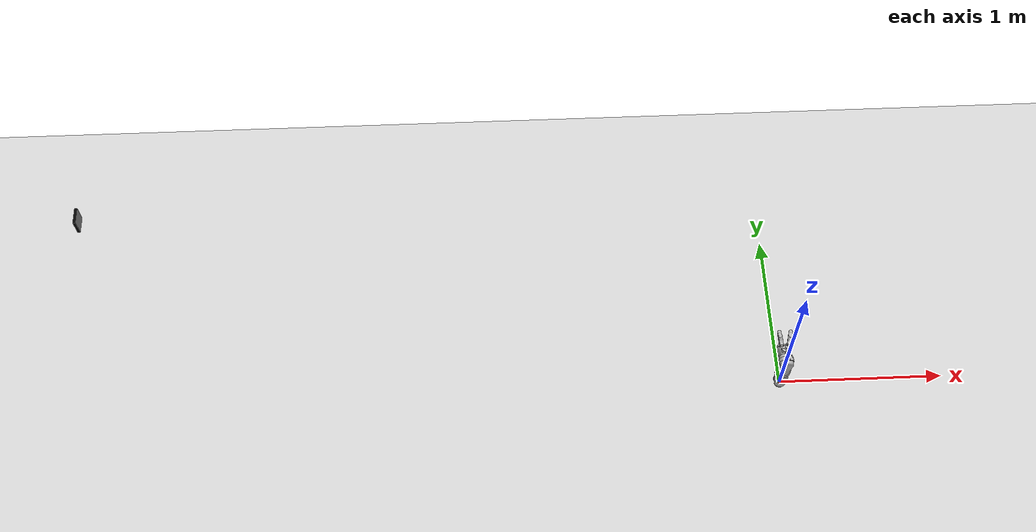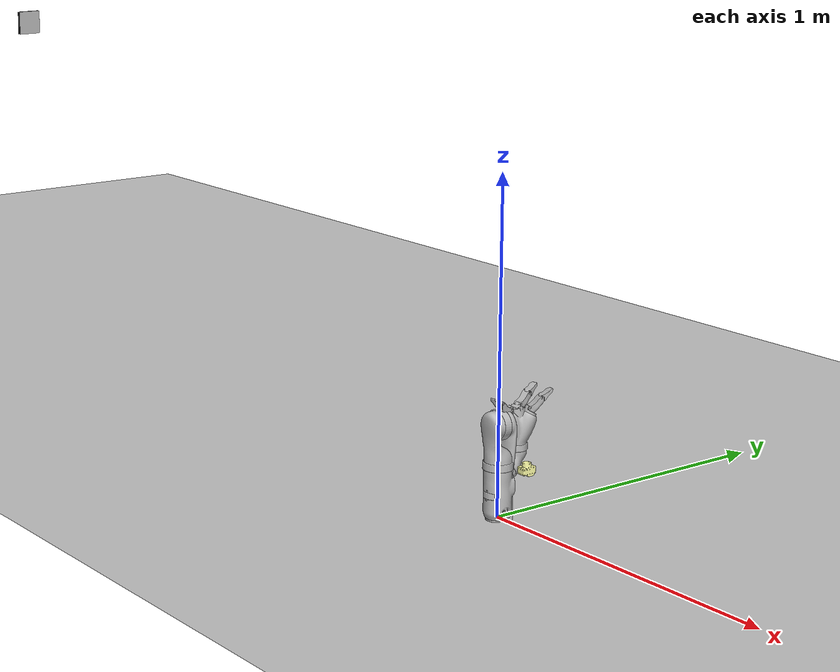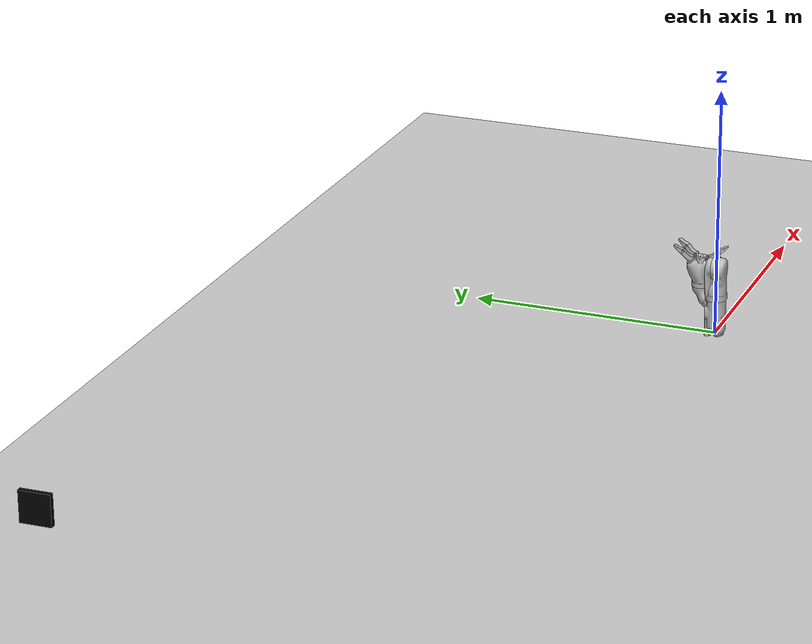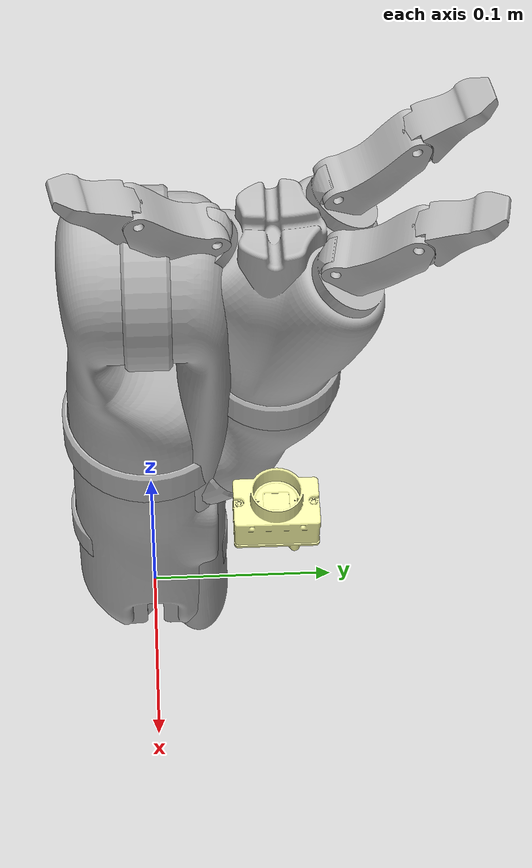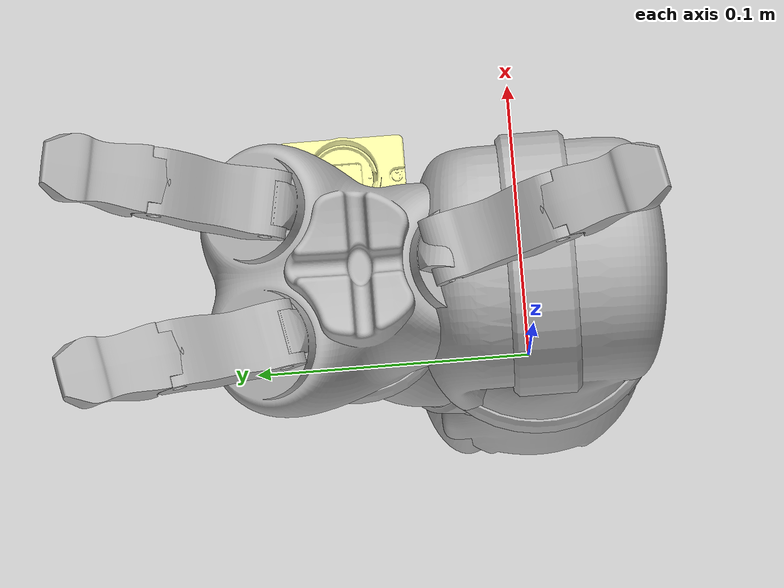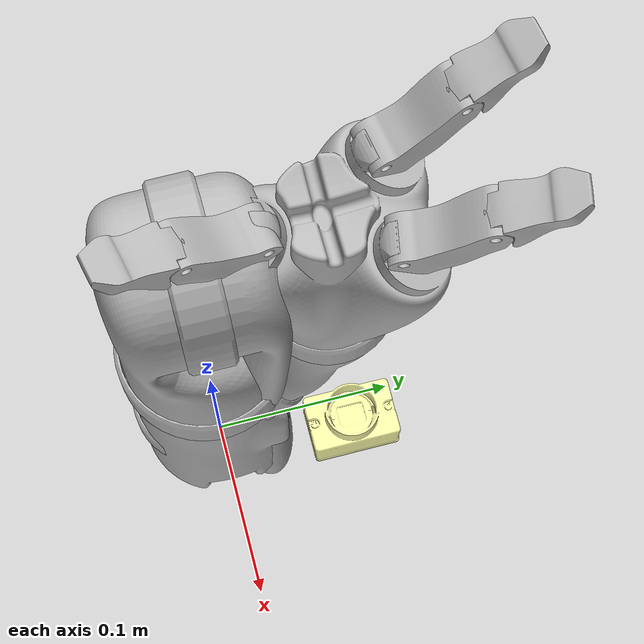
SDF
<sdf version="1.6">
 <world name="default">
  <model name="ground_plane">
   <static>1</static>
   <link name="link">
    <collision name="collision">
     <geometry><plane><normal>0 0 1</normal><size>100 100</size></plane></geometry>
     <surface><friction><ode><mu>100</mu><mu2>50</mu2></ode></friction></surface>
    </collision>
    <visual name="visual">
     <cast_shadows>0</cast_shadows>
     <geometry><plane><normal>0 0 1</normal><size>100 100</size></plane></geometry>
     <material>
      <script><uri>file://media/materials/scripts/gazebo.material</uri><name>Gazebo/Grey</name></script>
     </material>
    </visual>
   </link>
  </model>
  <light name="sun" type="directional">
   <pose>0 0 10 0 -0 0</pose>
   <diffuse>0.8 0.8 0.8 1</diffuse>
   <specular>0.1 0.1 0.1 1</specular>
   <attenuation>
    <range>1000</range>
    <constant>0.9</constant>
    <linear>0.01</linear>
    <quadratic>0.001</quadratic>
   </attenuation>
   <direction>-0.5 0.5 -1</direction>
  </light>
  <gravity>0 0 -9.8</gravity>
  <magnetic_field>6e-06 2.3e-05 -4.2e-05</magnetic_field>
  <atmosphere type="adiabatic"/>
  <physics name="default_physics" default="0" type="ode">
   <max_step_size>0.001</max_step_size>
   <real_time_factor>1</real_time_factor>
   <real_time_update_rate>1000</real_time_update_rate>
  </physics>
  <scene><ambient>0.4 0.4 0.4 1</ambient><background>0.7 0.7 0.7 1</background><shadows>1</shadows></scene>
  <spherical_coordinates>
   <surface_model>EARTH_WGS84</surface_model>
   <latitude_deg>0</latitude_deg>
   <longitude_deg>0</longitude_deg>
   <elevation>0</elevation>
   <heading_deg>0</heading_deg>
  </spherical_coordinates>
  <model name="j2n6s300">
   <link name="root">
    <inertial>
     <pose>0 0 0.1255 0 -0 0</pose>
     <mass>0.46784</mass>
     <inertia>
      <ixx>0.000951271</ixx>
      <ixy>0</ixy>
      <ixz>0</ixz>
      <iyy>0.000951271</iyy>
      <iyz>0</iyz>
      <izz>0.000374272</izz>
     </inertia>
    </inertial>
    <collision name="root_collision"><geometry><box><size>1e-05 1e-05 1e-05</size></box></geometry></collision>
    <collision name="root_fixed_joint_lump__j2n6s300_link_base_collision_1">
     <geometry>
      <mesh>
       <scale>1 1 1</scale>
       <uri>/home/caio/workspaces/jacob_ws/src/kinova-ros/kinova_description/meshes/base.dae</uri>
      </mesh>
     </geometry>
    </collision>
    <visual name="root_visual"><geometry><box><size>1e-05 1e-05 1e-05</size></box></geometry></visual>
    <visual name="root_fixed_joint_lump__j2n6s300_link_base_visual_1">
     <geometry>
      <mesh>
       <scale>1 1 1</scale>
       <uri>/home/caio/workspaces/jacob_ws/src/kinova-ros/kinova_description/meshes/base.dae</uri>
      </mesh>
     </geometry>
    </visual>
   </link>
   <joint name="connect_root_and_world" type="revolute">
    <child>root</child>
    <parent>world</parent>
    <axis>
     <limit><lower>0</lower><upper>0</upper></limit>
     <dynamics>
      <damping>0</damping>
      <friction>0</friction>
      <spring_reference>0</spring_reference>
      <spring_stiffness>0</spring_stiffness>
     </dynamics>
     <use_parent_model_frame>1</use_parent_model_frame>
     <xyz>0 0 1</xyz>
    </axis>
   </joint>
   <link name="j2n6s300_link_1">
    <pose>0 0 0.15675 3.14159 -0 3.14159</pose>
    <inertial>
     <pose>0 -0.002 -0.0605 0 -0 0</pose>
     <mass>0.7477</mass>
     <inertia>
      <ixx>0.00152032</ixx>
      <ixy>0</ixy>
      <ixz>0</ixz>
      <iyy>0.00152032</iyy>
      <iyz>0</iyz>
      <izz>0.00059816</izz>
     </inertia>
    </inertial>
    <collision name="j2n6s300_link_1_collision">
     <geometry>
      <mesh>
       <scale>1 1 1</scale>
       <uri>/home/caio/workspaces/jacob_ws/src/kinova-ros/kinova_description/meshes/shoulder.dae</uri>
      </mesh>
     </geometry>
    </collision>
    <visual name="j2n6s300_link_1_visual">
     <geometry>
      <mesh>
       <scale>1 1 1</scale>
       <uri>/home/caio/workspaces/jacob_ws/src/kinova-ros/kinova_description/meshes/shoulder.dae</uri>
      </mesh>
     </geometry>
    </visual>
    <visual name="j2n6s300_link_1_visual_1">
     <geometry>
      <mesh>
       <scale>1 1 1</scale>
       <uri>/home/caio/workspaces/jacob_ws/src/kinova-ros/kinova_description/meshes/ring_big.STL</uri>
      </mesh>
     </geometry>
    </visual>
   </link>
   <joint name="j2n6s300_joint_1" type="revolute">
    <child>j2n6s300_link_1</child>
    <parent>root</parent>
    <axis>
     <xyz>0 0 -1</xyz>
     <limit><lower>-1e+16</lower><upper>1e+16</upper></limit>
     <dynamics>
      <damping>0</damping>
      <friction>0</friction>
      <spring_reference>0</spring_reference>
      <spring_stiffness>0</spring_stiffness>
     </dynamics>
     <use_parent_model_frame>1</use_parent_model_frame>
    </axis>
   </joint>
   <link name="j2n6s300_link_2">
    <pose>0 0.0016 0.2755 1.5708 -0 0</pose>
    <inertial>
     <pose>0 -0.2065 -0.01 0 -0 0</pose>
     <mass>0.99</mass>
     <inertia>
      <ixx>0.0105022</ixx>
      <ixy>0</ixy>
      <ixz>0</ixz>
      <iyy>0.000792</iyy>
      <iyz>0</iyz>
      <izz>0.0105022</izz>
     </inertia>
    </inertial>
    <collision name="j2n6s300_link_2_collision">
     <geometry>
      <mesh>
       <scale>1 1 1</scale>
       <uri>/home/caio/workspaces/jacob_ws/src/kinova-ros/kinova_description/meshes/arm.dae</uri>
      </mesh>
     </geometry>
    </collision>
    <visual name="j2n6s300_link_2_visual">
     <geometry>
      <mesh>
       <scale>1 1 1</scale>
       <uri>/home/caio/workspaces/jacob_ws/src/kinova-ros/kinova_description/meshes/arm.dae</uri>
      </mesh>
     </geometry>
    </visual>
    <visual name="j2n6s300_link_2_visual_1">
     <geometry>
      <mesh>
       <scale>1 1 1</scale>
       <uri>/home/caio/workspaces/jacob_ws/src/kinova-ros/kinova_description/meshes/ring_big.STL</uri>
      </mesh>
     </geometry>
    </visual>
   </link>
   <joint name="j2n6s300_joint_2" type="revolute">
    <child>j2n6s300_link_2</child>
    <parent>j2n6s300_link_1</parent>
    <axis>
     <xyz>0 -1 0</xyz>
     <limit><lower>1</lower><upper>5.46288</upper><effort>2000</effort><velocity>1</velocity></limit>
     <dynamics>
      <damping>0</damping>
      <friction>0</friction>
      <spring_reference>0</spring_reference>
      <spring_stiffness>0</spring_stiffness>
     </dynamics>
     <use_parent_model_frame>1</use_parent_model_frame>
    </axis>
   </joint>
   <link name="j2n6s300_link_3">
    <pose>-0 0.0016 -0.1345 1.5708 -0 3.14159</pose>
    <inertial>
     <pose>0 0.081 -0.0086 0 -0 0</pose>
     <mass>0.6763</mass>
     <inertia>
      <ixx>0.00142022</ixx>
      <ixy>0</ixy>
      <ixz>0</ixz>
      <iyy>0.000304335</iyy>
      <iyz>0</iyz>
      <izz>0.00142022</izz>
     </inertia>
    </inertial>
    <collision name="j2n6s300_link_3_collision">
     <geometry>
      <mesh>
       <scale>1 1 1</scale>
       <uri>/home/caio/workspaces/jacob_ws/src/kinova-ros/kinova_description/meshes/forearm.dae</uri>
      </mesh>
     </geometry>
    </collision>
    <visual name="j2n6s300_link_3_visual">
     <geometry>
      <mesh>
       <scale>1 1 1</scale>
       <uri>/home/caio/workspaces/jacob_ws/src/kinova-ros/kinova_description/meshes/forearm.dae</uri>
      </mesh>
     </geometry>
    </visual>
    <visual name="j2n6s300_link_3_visual_1">
     <geometry>
      <mesh>
       <scale>1 1 1</scale>
       <uri>/home/caio/workspaces/jacob_ws/src/kinova-ros/kinova_description/meshes/ring_big.STL</uri>
      </mesh>
     </geometry>
    </visual>
   </link>
   <joint name="j2n6s300_joint_3" type="revolute">
    <child>j2n6s300_link_3</child>
    <parent>j2n6s300_link_2</parent>
    <axis>
     <xyz>0 1 0</xyz>
     <limit><lower>0.331613</lower><upper>5.95157</upper><effort>2000</effort><velocity>1</velocity></limit>
     <dynamics>
      <damping>0</damping>
      <friction>0</friction>
      <spring_reference>0</spring_reference>
      <spring_stiffness>0</spring_stiffness>
     </dynamics>
     <use_parent_model_frame>1</use_parent_model_frame>
    </axis>
   </joint>
   <link name="j2n6s300_link_4">
    <pose>-0 -0.0098 0.0728 -3.14159 0 0</pose>
    <inertial>
     <pose>0 -0.037 -0.0642 0 -0 0</pose>
     <mass>0.426367</mass>
     <inertia>
      <ixx>7.73497e-05</ixx>
      <ixy>0</ixy>
      <ixz>0</ixz>
      <iyy>7.73497e-05</iyy>
      <iyz>0</iyz>
      <izz>0.0001428</izz>
     </inertia>
    </inertial>
    <collision name="j2n6s300_link_4_collision">
     <geometry>
      <mesh>
       <scale>1 1 1</scale>
       <uri>/home/caio/workspaces/jacob_ws/src/kinova-ros/kinova_description/meshes/wrist.dae</uri>
      </mesh>
     </geometry>
    </collision>
    <visual name="j2n6s300_link_4_visual">
     <geometry>
      <mesh>
       <scale>1 1 1</scale>
       <uri>/home/caio/workspaces/jacob_ws/src/kinova-ros/kinova_description/meshes/wrist.dae</uri>
      </mesh>
     </geometry>
    </visual>
    <visual name="j2n6s300_link_4_visual_1">
     <geometry>
      <mesh>
       <scale>1 1 1</scale>
       <uri>/home/caio/workspaces/jacob_ws/src/kinova-ros/kinova_description/meshes/ring_small.STL</uri>
      </mesh>
     </geometry>
    </visual>
   </link>
   <joint name="j2n6s300_joint_4" type="revolute">
    <child>j2n6s300_link_4</child>
    <parent>j2n6s300_link_3</parent>
    <axis>
     <xyz>0 0 -1</xyz>
     <limit><lower>-1e+16</lower><upper>1e+16</upper></limit>
     <dynamics>
      <damping>0</damping>
      <friction>0</friction>
      <spring_reference>0</spring_reference>
      <spring_stiffness>0</spring_stiffness>
     </dynamics>
     <use_parent_model_frame>1</use_parent_model_frame>
    </axis>
   </joint>
   <link name="j2n6s300_link_5">
    <pose>0 0.02723 0.13694 -2.0944 -0 3.14159</pose>
    <inertial>
     <pose>0 -0.037 -0.0642 0 -0 0</pose>
     <mass>0.426367</mass>
     <inertia>
      <ixx>7.73497e-05</ixx>
      <ixy>0</ixy>
      <ixz>0</ixz>
      <iyy>7.73497e-05</iyy>
      <iyz>0</iyz>
      <izz>0.0001428</izz>
     </inertia>
    </inertial>
    <collision name="j2n6s300_link_5_collision">
     <geometry>
      <mesh>
       <scale>1 1 1</scale>
       <uri>/home/caio/workspaces/jacob_ws/src/kinova-ros/kinova_description/meshes/wrist.dae</uri>
      </mesh>
     </geometry>
    </collision>
    <visual name="j2n6s300_link_5_visual">
     <geometry>
      <mesh>
       <scale>1 1 1</scale>
       <uri>/home/caio/workspaces/jacob_ws/src/kinova-ros/kinova_description/meshes/wrist.dae</uri>
      </mesh>
     </geometry>
    </visual>
    <visual name="j2n6s300_link_5_visual_1">
     <geometry>
      <mesh>
       <scale>1 1 1</scale>
       <uri>/home/caio/workspaces/jacob_ws/src/kinova-ros/kinova_description/meshes/ring_small.STL</uri>
      </mesh>
     </geometry>
    </visual>
   </link>
   <joint name="j2n6s300_joint_5" type="revolute">
    <child>j2n6s300_link_5</child>
    <parent>j2n6s300_link_4</parent>
    <axis>
     <xyz>0 -0.866025 -0.5</xyz>
     <limit><lower>-1e+16</lower><upper>1e+16</upper></limit>
     <dynamics>
      <damping>0</damping>
      <friction>0</friction>
      <spring_reference>0</spring_reference>
      <spring_stiffness>0</spring_stiffness>
     </dynamics>
     <use_parent_model_frame>1</use_parent_model_frame>
    </axis>
   </joint>
   <link name="j2n6s300_link_6">
    <pose>0 0.064262 0.201079 -3.14159 0 0</pose>
    <inertial>
     <pose>1e-06 0 -0.059999 0 -0 0</pose>
     <mass>0.99001</mass>
     <inertia>
      <ixx>0.000346461</ixx>
      <ixy>0</ixy>
      <ixz>-5.84994e-08</ixz>
      <iyy>0.000346486</iyy>
      <iyz>0</iyz>
      <izz>0.000582625</izz>
     </inertia>
    </inertial>
    <collision name="j2n6s300_link_6_collision">
     <geometry>
      <mesh>
       <scale>1 1 1</scale>
       <uri>/home/caio/workspaces/jacob_ws/src/kinova-ros/kinova_description/meshes/hand_3finger.dae</uri>
      </mesh>
     </geometry>
    </collision>
    <collision name="j2n6s300_link_6_fixed_joint_lump__camera_link_collision_1">
     <pose>0.05 0 0.057 0 -0 0</pose>
     <geometry>
      <mesh>
       <scale>1 1 1</scale>
       <uri>/home/caio/workspaces/jacob_ws/src/jacob_description/meshes/Genie_Nano.dae</uri>
      </mesh>
     </geometry>
    </collision>
    <collision name="j2n6s300_link_6_fixed_joint_lump__j2n6s300_end_effector_collision_2">
     <pose>0 0 -0.16 -3.14159 -0 1.5708</pose>
     <geometry><box><size>1e-05 1e-05 1e-05</size></box></geometry>
    </collision>
    <visual name="j2n6s300_link_6_visual">
     <geometry>
      <mesh>
       <scale>1 1 1</scale>
       <uri>/home/caio/workspaces/jacob_ws/src/kinova-ros/kinova_description/meshes/hand_3finger.dae</uri>
      </mesh>
     </geometry>
    </visual>
    <visual name="j2n6s300_link_6_visual_1">
     <geometry>
      <mesh>
       <scale>1 1 1</scale>
       <uri>/home/caio/workspaces/jacob_ws/src/kinova-ros/kinova_description/meshes/ring_small.STL</uri>
      </mesh>
     </geometry>
    </visual>
    <visual name="j2n6s300_link_6_fixed_joint_lump__camera_link_visual_2">
     <pose>0.05 0 0.057 1.5707 -0 -1.5707</pose>
     <geometry>
      <mesh>
       <scale>1 1 1</scale>
       <uri>/home/caio/workspaces/jacob_ws/src/jacob_description/meshes/Genie_Nano.dae</uri>
      </mesh>
     </geometry>
     <material><script><uri>__default__</uri><name>__default__</name></script></material>
    </visual>
    <visual name="j2n6s300_link_6_fixed_joint_lump__j2n6s300_end_effector_visual_3">
     <pose>0 0 -0.16 -3.14159 -0 1.5708</pose>
     <geometry><box><size>1e-05 1e-05 1e-05</size></box></geometry>
    </visual>
    <sensor name="camera" type="camera">
     <update_rate>22.7</update_rate>
     <camera name="head">
      <horizontal_fov>1.39626</horizontal_fov>
      <image><width>800</width><height>800</height><format>R8G8B8</format></image>
      <clip><near>0.02</near><far>300</far></clip>
      <noise><type>gaussian</type><mean>0</mean><stddev>0.007</stddev></noise>
     </camera>
     <plugin name="camera_controller" filename="libgazebo_ros_camera.so">
      <alwaysOn>true</alwaysOn>
      <updateRate>0.0</updateRate>
      <cameraName>camera</cameraName>
      <imageTopicName>image_raw</imageTopicName>
      <cameraInfoTopicName>camera_info</cameraInfoTopicName>
      <frameName>camera_link</frameName>
      <hackBaseline>0.07</hackBaseline>
      <distortionK1>0.0</distortionK1>
      <distortionK2>0.0</distortionK2>
      <distortionK3>0.0</distortionK3>
      <distortionT1>0.0</distortionT1>
      <distortionT2>0.0</distortionT2>
      <robotNamespace>/</robotNamespace>
     </plugin>
     <pose>0.05 0 0.057 0 -0 0</pose>
    </sensor>
   </link>
   <joint name="j2n6s300_joint_6" type="revolute">
    <child>j2n6s300_link_6</child>
    <parent>j2n6s300_link_5</parent>
    <axis>
     <xyz>0 0 -1</xyz>
     <limit><lower>-1e+16</lower><upper>1e+16</upper></limit>
     <dynamics>
      <damping>0</damping>
      <friction>0</friction>
      <spring_reference>0</spring_reference>
      <spring_stiffness>0</spring_stiffness>
     </dynamics>
     <use_parent_model_frame>1</use_parent_model_frame>
    </axis>
   </joint>
   <link name="j2n6s300_link_finger_1">
    <pose>0.00279 0.033002 0.315749 1.5708 -0.649262 -1.35961</pose>
    <inertial>
     <pose>0.044 -0.0015 0 0 -0 0</pose>
     <mass>0.02</mass>
     <inertia>
      <ixx>1.62499e-06</ixx>
      <ixy>6.6e-07</ixy>
      <ixz>0</ixz>
      <iyy>1.126e-05</iyy>
      <iyz>0</iyz>
      <izz>9.885e-06</izz>
     </inertia>
    </inertial>
    <collision name="j2n6s300_link_finger_1_collision">
     <geometry>
      <mesh>
       <scale>1 1 1</scale>
       <uri>/home/caio/workspaces/jacob_ws/src/kinova-ros/kinova_description/meshes/finger_proximal.dae</uri>
      </mesh>
     </geometry>
    </collision>
    <collision name="j2n6s300_link_finger_1_fixed_joint_lump__j2n6s300_link_finger_tip_1_collision_1">
     <pose>0.044 -0.003 0 0 -0 0</pose>
     <geometry>
      <mesh>
       <scale>1 1 1</scale>
       <uri>/home/caio/workspaces/jacob_ws/src/kinova-ros/kinova_description/meshes/finger_distal.dae</uri>
      </mesh>
     </geometry>
    </collision>
    <visual name="j2n6s300_link_finger_1_visual">
     <geometry>
      <mesh>
       <scale>1 1 1</scale>
       <uri>/home/caio/workspaces/jacob_ws/src/kinova-ros/kinova_description/meshes/finger_proximal.dae</uri>
      </mesh>
     </geometry>
    </visual>
    <visual name="j2n6s300_link_finger_1_fixed_joint_lump__j2n6s300_link_finger_tip_1_visual_1">
     <pose>0.044 -0.003 0 0 -0 0</pose>
     <geometry>
      <mesh>
       <scale>1 1 1</scale>
       <uri>/home/caio/workspaces/jacob_ws/src/kinova-ros/kinova_description/meshes/finger_distal.dae</uri>
      </mesh>
     </geometry>
    </visual>
   </link>
   <joint name="j2n6s300_joint_finger_1" type="revolute">
    <child>j2n6s300_link_finger_1</child>
    <parent>j2n6s300_link_6</parent>
    <axis>
     <xyz>-0.977783 -0.209619 0</xyz>
     <limit><lower>0</lower><upper>2</upper><effort>2000</effort><velocity>1</velocity></limit>
     <dynamics><spring_reference>0</spring_reference><spring_stiffness>0</spring_stiffness></dynamics>
     <use_parent_model_frame>1</use_parent_model_frame>
    </axis>
   </joint>
   <link name="j2n6s300_link_finger_2">
    <pose>0.02226 0.091332 0.315899 1.5708 -0.649262 1.38614</pose>
    <inertial>
     <pose>0.044 -0.0015 0 0 -0 0</pose>
     <mass>0.02</mass>
     <inertia>
      <ixx>1.62499e-06</ixx>
      <ixy>6.6e-07</ixy>
      <ixz>0</ixz>
      <iyy>1.126e-05</iyy>
      <iyz>0</iyz>
      <izz>9.885e-06</izz>
     </inertia>
    </inertial>
    <collision name="j2n6s300_link_finger_2_collision">
     <geometry>
      <mesh>
       <scale>1 1 1</scale>
       <uri>/home/caio/workspaces/jacob_ws/src/kinova-ros/kinova_description/meshes/finger_proximal.dae</uri>
      </mesh>
     </geometry>
    </collision>
    <collision name="j2n6s300_link_finger_2_fixed_joint_lump__j2n6s300_link_finger_tip_2_collision_1">
     <pose>0.044 -0.003 0 0 -0 0</pose>
     <geometry>
      <mesh>
       <scale>1 1 1</scale>
       <uri>/home/caio/workspaces/jacob_ws/src/kinova-ros/kinova_description/meshes/finger_distal.dae</uri>
      </mesh>
     </geometry>
    </collision>
    <visual name="j2n6s300_link_finger_2_visual">
     <geometry>
      <mesh>
       <scale>1 1 1</scale>
       <uri>/home/caio/workspaces/jacob_ws/src/kinova-ros/kinova_description/meshes/finger_proximal.dae</uri>
      </mesh>
     </geometry>
    </visual>
    <visual name="j2n6s300_link_finger_2_fixed_joint_lump__j2n6s300_link_finger_tip_2_visual_1">
     <pose>0.044 -0.003 0 0 -0 0</pose>
     <geometry>
      <mesh>
       <scale>1 1 1</scale>
       <uri>/home/caio/workspaces/jacob_ws/src/kinova-ros/kinova_description/meshes/finger_distal.dae</uri>
      </mesh>
     </geometry>
    </visual>
   </link>
   <joint name="j2n6s300_joint_finger_2" type="revolute">
    <child>j2n6s300_link_finger_2</child>
    <parent>j2n6s300_link_6</parent>
    <axis>
     <xyz>0.983 -0.183608 0</xyz>
     <limit><lower>0</lower><upper>2</upper><effort>2000</effort><velocity>1</velocity></limit>
     <dynamics><spring_reference>0</spring_reference><spring_stiffness>0</spring_stiffness></dynamics>
     <use_parent_model_frame>1</use_parent_model_frame>
    </axis>
   </joint>
   <link name="j2n6s300_link_finger_3">
    <pose>-0.02226 0.091332 0.315899 1.5708 -0.649262 1.75545</pose>
    <inertial>
     <pose>0.044 -0.0015 0 0 -0 0</pose>
     <mass>0.02</mass>
     <inertia>
      <ixx>1.62499e-06</ixx>
      <ixy>6.6e-07</ixy>
      <ixz>0</ixz>
      <iyy>1.126e-05</iyy>
      <iyz>0</iyz>
      <izz>9.885e-06</izz>
     </inertia>
    </inertial>
    <collision name="j2n6s300_link_finger_3_collision">
     <geometry>
      <mesh>
       <scale>1 1 1</scale>
       <uri>/home/caio/workspaces/jacob_ws/src/kinova-ros/kinova_description/meshes/finger_proximal.dae</uri>
      </mesh>
     </geometry>
    </collision>
    <collision name="j2n6s300_link_finger_3_fixed_joint_lump__j2n6s300_link_finger_tip_3_collision_1">
     <pose>0.044 -0.003 0 0 -0 0</pose>
     <geometry>
      <mesh>
       <scale>1 1 1</scale>
       <uri>/home/caio/workspaces/jacob_ws/src/kinova-ros/kinova_description/meshes/finger_distal.dae</uri>
      </mesh>
     </geometry>
    </collision>
    <visual name="j2n6s300_link_finger_3_visual">
     <geometry>
      <mesh>
       <scale>1 1 1</scale>
       <uri>/home/caio/workspaces/jacob_ws/src/kinova-ros/kinova_description/meshes/finger_proximal.dae</uri>
      </mesh>
     </geometry>
    </visual>
    <visual name="j2n6s300_link_finger_3_fixed_joint_lump__j2n6s300_link_finger_tip_3_visual_1">
     <pose>0.044 -0.003 0 0 -0 0</pose>
     <geometry>
      <mesh>
       <scale>1 1 1</scale>
       <uri>/home/caio/workspaces/jacob_ws/src/kinova-ros/kinova_description/meshes/finger_distal.dae</uri>
      </mesh>
     </geometry>
    </visual>
   </link>
   <joint name="j2n6s300_joint_finger_3" type="revolute">
    <child>j2n6s300_link_finger_3</child>
    <parent>j2n6s300_link_6</parent>
    <axis>
     <xyz>0.983 0.183608 0</xyz>
     <limit><lower>0</lower><upper>2</upper><effort>2000</effort><velocity>1</velocity></limit>
     <dynamics><spring_reference>0</spring_reference><spring_stiffness>0</spring_stiffness></dynamics>
     <use_parent_model_frame>1</use_parent_model_frame>
    </axis>
   </joint>
   <static>0</static>
   <plugin name="gazebo_ros_control" filename="libgazebo_ros_control.so">
    <robotNamespace>j2n6s300</robotNamespace>
    <robotSimType>gazebo_ros_control/DefaultRobotHWSim</robotSimType>
   </plugin>
   <pose>-1.4e-05 -1.6e-05 6e-06 -2.8e-05 2.1e-05 -7e-06</pose>
  </model>
  <model name="april_box">
   <link name="box">
    <inertial>
     <mass>35.3365</mass>
     <inertia>
      <ixx>1.84916</ixx>
      <ixy>-0.000354</ixy>
      <ixz>-0.154188</ixz>
      <iyy>1.66267</iyy>
      <iyz>0.003292</iyz>
      <izz>0.802239</izz>
     </inertia>
    </inertial>
    <collision name="box_collision">
     <geometry>
      <mesh>
       <scale>1 1 1</scale>
       <uri>/home/caio/workspaces/jacob_ws/src/jacob_description/meshes/april_box.dae</uri>
      </mesh>
     </geometry>
    </collision>
    <visual name="box_visual">
     <geometry>
      <mesh>
       <scale>1 1 1</scale>
       <uri>/home/caio/workspaces/jacob_ws/src/jacob_description/meshes/april_box.dae</uri>
      </mesh>
     </geometry>
    </visual>
   </link>
   <pose>-4.09165 0.700423 1 -1.5708 1e-06 0.026416</pose>
  </model>
 </world>
</sdf>
